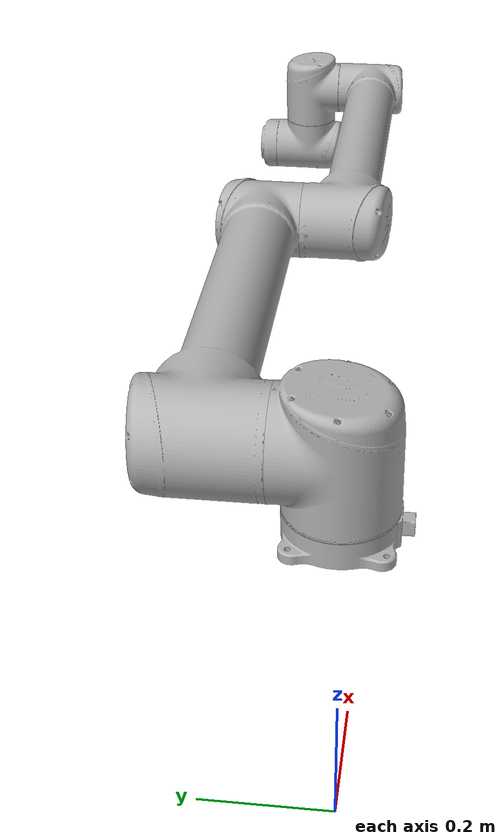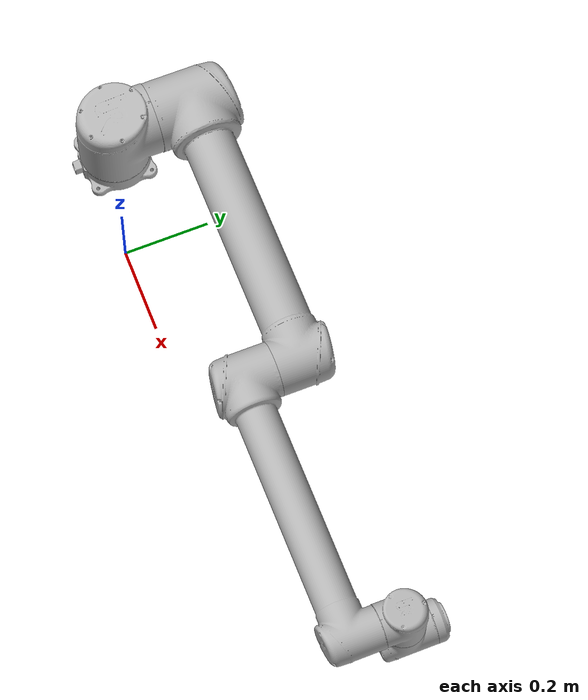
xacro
<?xml version="1.0"?>
<robot name="spacelab_robot" xmlns:xacro="http://www.ros.org/wiki/xacro">

  <!-- Add some parameters that will be post processed by xacro and replaced in the file -->
  <xacro:property name="PKG_Name" value="isaacsim_rviz_training" />

  <!-- Material definition. These materials will be used for vizualisation in RVIZ -->
  <material name="black">
    <color rgba="0.0 0.0 0.0 1.0"/>
  </material>

  <material name="blue">
    <color rgba="0.0 0.0 0.8 1.0"/>
  </material>

  <material name="green">
    <color rgba="0.0 0.8 0.0 1.0"/>
  </material>

  <material name="grey">
    <color rgba="0.2 0.2 0.2 1.0"/>
  </material>

  <material name="orange">
    <color rgba="${255/255} ${108/255} ${10/255} 1.0"/>
  </material>

  <material name="brown">
    <color rgba="${222/255} ${207/255} ${195/255} 1.0"/>
  </material>

  <material name="red">
    <color rgba="0.8 0.0 0.0 1.0"/>
  </material>

  <material name="white">
    <color rgba="1.0 1.0 1.0 1.0"/>
  </material>

  <!-- Used for fixing robot to the world -->
  <link name="world"/>

  <!-- This first joint is fixed and link the world and the link_1 -->
  <joint name="joint_world_1" type="fixed">
    <parent link="world"/>
    <child link="link_1"/>
    <origin rpy="0.0 0.0 0.0" xyz="0.0 0.0 0.5"/>
  </joint>

  <!-- Definition of the baselink corresponding to the robot base -->
  <link name="link_1">
    <visual>
      <geometry>
        <!-- but it's prefered to define the path relatively to the package -->
        <mesh filename="package://${PKG_Name}/description/meshes/Base.dae"/>
      </geometry>
      <material name="LightGrey">
        <color rgba="0.7 0.7 0.7 1.0"/>
      </material>
    </visual>
    <collision>
      <geometry>
        <mesh filename="package://${PKG_Name}/description/meshes/Base.dae"/>
      </geometry>
    </collision>
    <inertial>
      <mass value="4.0"/>
      <origin rpy="0.0 0.0 0.0" xyz="0.0 0.0 0.0"/>
      <inertia ixx="0.0061063308908" ixy="0.0" ixz="0.0" iyy="0.0061063308908" iyz="0.0" izz="0.01125"/>
    </inertial>
  </link>

  <!-- Definition of the 1st joint -->
  <joint name="joint_1_2" type="revolute">
    <parent link="link_1"/>
    <child link="link_2"/>
    <origin rpy="0.0 0.0 0.0" xyz="0.0 0.0 0.1273"/>
    <axis xyz="0 0 1"/>
    <limit effort="330.0" lower="-3.14159265" upper="3.14159265" velocity="2.16"/>
    <dynamics damping="10.0" friction="10.0"/>
  </joint>

  <!-- Definition of the 1st movable part of the robot -->
  <link name="link_2">
    <visual>
      <geometry>
        <mesh filename="package://${PKG_Name}/description/meshes/Shoulder.dae"/>
      </geometry>
      <material name="LightGrey">
        <color rgba="0.7 0.7 0.7 1.0"/>
      </material>
    </visual>
    <collision>
      <geometry>
        <mesh filename="package://${PKG_Name}/description/meshes/Shoulder.dae"/>
      </geometry>
    </collision>
    <inertial>
      <mass value="7.778"/>
      <origin rpy="0 0 0" xyz="0.0 0.0 0.0"/>
      <inertia ixx="0.0314743125769" ixy="0.0" ixz="0.0" iyy="0.0314743125769" iyz="0.0" izz="0.021875625"/>
    </inertial>
  </link>

  <!-- Definition of the 2nd joint -->
  <joint name="joint_2_3" type="revolute">
    <parent link="link_2"/>
    <child link="link_3"/>
    <origin rpy="0.0 1.570796325 0.0" xyz="0.0 0.220941 0.0"/>
    <axis xyz="0 1 0"/>
    <limit effort="330.0" lower="-3.14159265" upper="3.14159265" velocity="2.16"/>
    <dynamics damping="10.0" friction="10.0"/>
  </joint>

  <!-- Definition of the 2nd movable part of the robot -->
  <link name="link_3">
    <visual>
      <geometry>
        <mesh filename="package://${PKG_Name}/description/meshes/UpperArm.dae"/>
      </geometry>
      <material name="LightGrey">
        <color rgba="0.7 0.7 0.7 1.0"/>
      </material>
    </visual>
    <collision>
      <geometry>
        <mesh filename="package://${PKG_Name}/description/meshes/UpperArm.dae"/>
      </geometry>
    </collision>
    <inertial>
      <mass value="12.93"/>
      <origin rpy="0 0 0" xyz="0.0 0.0 0.306"/>
      <inertia ixx="0.421753803798" ixy="0.0" ixz="0.0" iyy="0.421753803798" iyz="0.0" izz="0.036365625"/>
    </inertial>
  </link>

  <!-- Definition of the 3rd joint -->
  <joint name="joint_3_4" type="revolute">
    <parent link="link_3"/>
    <child link="link_4"/>
    <origin rpy="0.0 0.0 0.0" xyz="0.0 -0.1719 0.612"/>
    <axis xyz="0 1 0"/>
    <limit effort="150.0" lower="-3.14159265" upper="3.14159265" velocity="3.15"/>
    <dynamics damping="10.0" friction="10.0"/>
  </joint>

  <!-- Definition of the 3rd movable part of the robot -->
  <link name="link_4">
    <visual>
      <geometry>
        <mesh filename="package://${PKG_Name}/description/meshes/Forearm.dae"/>
      </geometry>
      <material name="LightGrey">
        <color rgba="0.7 0.7 0.7 1.0"/>
      </material>
    </visual>
    <collision>
      <geometry>
        <mesh filename="package://${PKG_Name}/description/meshes/Forearm.dae"/>
      </geometry>
    </collision>
    <inertial>
      <mass value="3.87"/>
      <origin rpy="0 0 0" xyz="0.0 0.0 0.28615"/>
      <inertia ixx="0.111069694097" ixy="0.0" ixz="0.0" iyy="0.111069694097" iyz="0.0" izz="0.010884375"/>
    </inertial>
  </link>

  <!-- Definition of the 4th joint -->
  <joint name="joint_4_5" type="revolute">
    <parent link="link_4"/>
    <child link="link_5"/>
    <origin rpy="0.0 1.570796325 0.0" xyz="0.0 0.0 0.5723"/>
    <axis xyz="0 1 0"/>
    <limit effort="54.0" lower="-3.14159265" upper="3.14159265" velocity="3.2"/>
    <dynamics damping="10.0" friction="10.0"/>
  </joint>

  <!-- Definition of the 4th movable part of the robot -->
  <link name="link_5">
    <visual>
      <geometry>
        <mesh filename="package://${PKG_Name}/description/meshes/Wrist1.dae"/>
      </geometry>
      <material name="LightGrey">
        <color rgba="0.7 0.7 0.7 1.0"/>
      </material>
    </visual>
    <collision>
      <geometry>
        <mesh filename="package://${PKG_Name}/description/meshes/Wrist1.dae"/>
      </geometry>
    </collision>
    <inertial>
      <mass value="1.96"/>
      <origin rpy="0 0 0" xyz="0.0 0.0 0.0"/>
      <inertia ixx="0.0051082479567" ixy="0.0" ixz="0.0" iyy="0.0051082479567" iyz="0.0" izz="0.0055125"/>
    </inertial>
  </link>

  <!-- Definition of the 5th joint -->
  <joint name="joint_5_6" type="revolute">
    <parent link="link_5"/>
    <child link="link_6"/>
    <origin rpy="0.0 0.0 0.0" xyz="0.0 0.1149 0.0"/>
    <axis xyz="0 0 1"/>
    <limit effort="54.0" lower="-3.14159265" upper="3.14159265" velocity="3.2"/>
    <dynamics damping="10.0" friction="10.0"/>
  </joint>

  <!-- Definition of the 5th movable part of the robot -->
  <link name="link_6">
    <visual>
      <geometry>
        <mesh filename="package://${PKG_Name}/description/meshes/Wrist2.dae"/>
      </geometry>
      <material name="LightGrey">
        <color rgba="0.7 0.7 0.7 1.0"/>
      </material>
    </visual>
    <collision>
      <geometry>
        <mesh filename="package://${PKG_Name}/description/meshes/Wrist2.dae"/>
      </geometry>
    </collision>
    <inertial>
      <mass value="1.96"/>
      <origin rpy="0 0 0" xyz="0.0 0.0 0.0"/>
      <inertia ixx="0.0051082479567" ixy="0.0" ixz="0.0" iyy="0.0051082479567" iyz="0.0" izz="0.0055125"/>
    </inertial>
  </link>

  <!-- Definition of the 6th joint -->
  <joint name="joint_6_7" type="revolute">
    <parent link="link_6"/>
    <child link="link_7"/>
    <origin rpy="0.0 0.0 0.0" xyz="0.0 0.0 0.1157"/>
    <axis xyz="0 1 0"/>
    <limit effort="54.0" lower="-3.14159265" upper="3.14159265" velocity="3.2"/>
    <dynamics damping="10.0" friction="10.0"/>
  </joint>

  <!-- Definition of the 6th movable part of the robot -->
  <link name="link_7">
    <visual>
      <geometry>
        <mesh filename="package://${PKG_Name}/description/meshes/Wrist3.dae"/>
      </geometry>
      <material name="LightGrey">
        <color rgba="0.7 0.7 0.7 1.0"/>
      </material>
    </visual>
    <collision>
      <geometry>
        <mesh filename="package://${PKG_Name}/description/meshes/Wrist3.dae"/>
      </geometry>
    </collision>
    <inertial>
      <mass value="0.202"/>
      <origin rpy="0 0 0" xyz="0.0 0.0 0.0"/>
      <inertia ixx="0.000526462289415" ixy="0.0" ixz="0.0" iyy="0.000526462289415" iyz="0.0" izz="0.000568125"/>
    </inertial>
  </link>

</robot>
